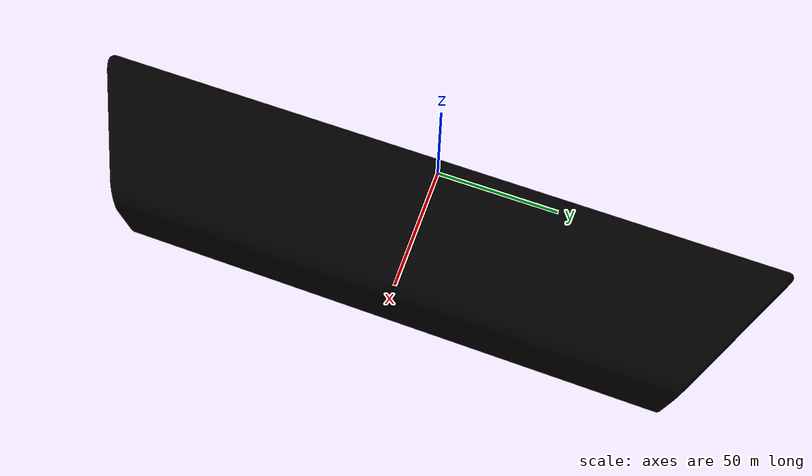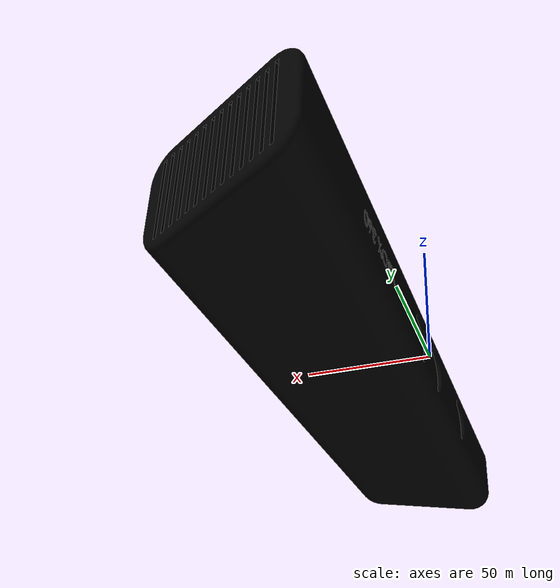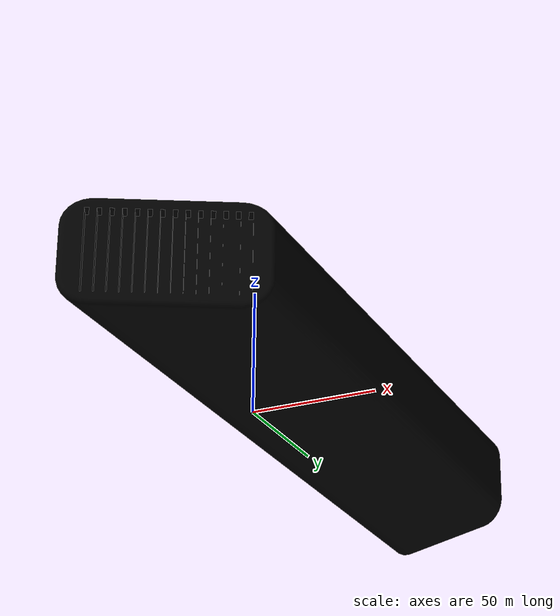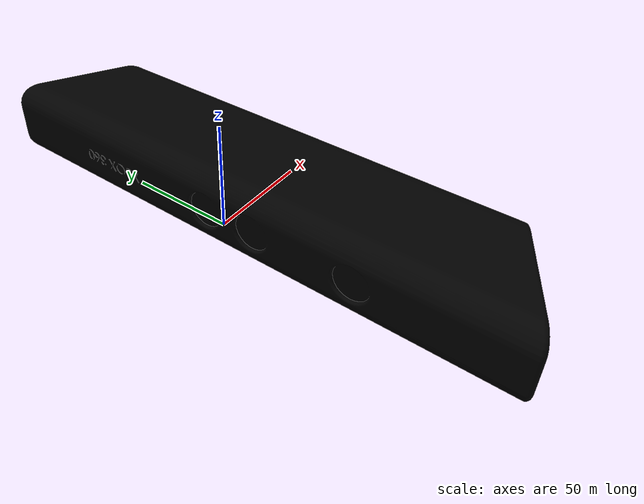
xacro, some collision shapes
<?xml version="1.0"?>
<robot name="justina" xmlns:xacro="http://www.ros.org/wiki/xacro">
	<!-- Import all Gazebo-customization elements, including Gazebo colors -->
	<xacro:include filename="$(find knowledge)/hardware/justina.gazebo" />
	<!-- Import Rviz colors -->
	<xacro:include filename="$(find knowledge)/hardware/materials.xacro" />
	<xacro:include filename="$(find knowledge)/hardware/macros.xacro" />

	<xacro:property name="base_radius" value="0.21"/>
	<xacro:property name="base_height" value="0.2156"/>
	<xacro:property name="base_mass" value="2.0"/>
	<xacro:property name="wheel_radius" value="0.075"/>
	<xacro:property name="wheel_height" value="0.04"/>
	<xacro:property name="wheel_mass" value="0.52098"/>
	<xacro:property name="torso_mass" value="0.6"/>
	<xacro:property name="spine_mass" value="0.1"/>
	<xacro:property name="neck_mass" value="0.001"/>
	<xacro:property name="MX_106_mass" value="0.01"/>
	<xacro:property name="MX_64_mass" value="0.01"/>
	<xacro:property name="kinect_mass" value="0.564"/>
	<xacro:property name="M_PI" value="1.5708"/>
	<xacro:property name="PI" value="3.1416"/>

	<link name="base_link"/>

	<joint name="hex_base_connect" type="fixed">
		<origin xyz="0 0 0" rpy="0 0 0" />
		<parent link="base_link"/>
		<child link="hex_base_link" />
	</joint>

	<link name="hex_base_link">
		<visual>
			<origin xyz="0.0 0.0 0.075" rpy="0.0 0 1.5708"/>
			<!-- origin xyz="0 0 0.1828" rpy="0 0 0"/ -->
			<geometry>
				<mesh filename="package://knowledge/hardware/stl/base/baseHex.dae"/>
				<!-- cylinder length="${base_height}" radius="${base_radius}"/ -->
			</geometry>
			<material name="grey"/>
		</visual>
		<collision>
			<origin xyz="0 0 0.1828" rpy="0 0 0"/>
			<geometry><cylinder length="${base_height}" radius="${base_radius}"/></geometry>
		</collision>
		<inertial>
			<origin xyz="0 0 0.1828" rpy="0 0 0"/>
			<mass value="${base_mass}"/>
			<cylinder_inertia m="${base_mass}" r="${base_radius}" h="${base_height}"/>
		</inertial>
	</link>
	<joint name="wheel_front_left_connect" type="continuous">
		<origin xyz="0.1091 0.189 0.075" rpy="1.57078 0 -3.67"/>
		<parent link="hex_base_link"/>
		<child link="wheel_front_left"/>
		<axis xyz="0 0 1"/>
	</joint>

	<link name="wheel_front_left">
		<visual>
			<origin xyz="0 0 0" rpy="0 3.1416 0"/>
			<geometry>
				<mesh filename="package://knowledge/hardware/stl/base/rueda.dae"/>
				<!-- cylinder length="${wheel_height}" radius="${wheel_radius}"/ -->
			</geometry>
			<material name="grey"/>
		</visual>
		<collision>
			<origin xyz="0 0 0" rpy="0 0 0"/>
			<geometry><cylinder length="${wheel_height}" radius="${wheel_radius}"/></geometry>
		</collision>
		<inertial>
			<origin xyz="0 0 0"/>
			<mass value="${wheel_mass}"/>
			<cylinder_inertia m="${wheel_mass}" r="${wheel_radius}" h="${wheel_height}"/>
		</inertial>
	</link>

	<joint name="wheel_back_connect" type="continuous">
		<origin xyz="-0.2182 0 0.075" rpy="1.57078 0 -1.5708"/>
		<parent link="hex_base_link"/>
		<child link="wheel_back"/>
		<axis xyz="0 0 1"/>
	</joint>

	<link name="wheel_back">
		<visual>
			<origin xyz="0 0 0" rpy="0 3.1416 0"/>
			<geometry>
				<mesh filename="package://knowledge/hardware/stl/base/rueda.dae"/>
				<!-- cylinder length="${wheel_height}" radius="${wheel_radius}"/ -->
			</geometry>
			<material name="grey"/>
		</visual>
		<collision>
			<origin xyz="0 0 0" rpy="0 0 0"/>
			<geometry><cylinder length="${wheel_height}" radius="${wheel_radius}"/></geometry>
		</collision>
		<inertial>
			<origin xyz="0 0 0" rpy="0 0 0"/>
			<mass value="${wheel_mass}"/>
			<cylinder_inertia m="${wheel_mass}" r="${wheel_radius}" h="${wheel_height}"/>
		</inertial>
	</link>

	<joint name="wheel_front_right_connect" type="continuous">
		<origin xyz="0.1091 -0.189 0.075" rpy="1.57078 0 3.67"/>
		<parent link="hex_base_link"/>
		<child link="wheel_front_right"/>
		<axis xyz="0 0 1"/>
	</joint>

	<link name="wheel_front_right">
		<visual>
			<origin xyz="0 0 0" rpy="0 0 0"/>
			<geometry>
				<mesh filename="package://knowledge/hardware/stl/base/rueda.dae"/>
				<!-- cylinder length="${wheel_height}" radius="${wheel_radius}"/ -->
			</geometry>
			<material name="grey"/>
		</visual>
		<collision>
			<origin xyz="0 0 0" rpy="0 0 0"/>
			<geometry><cylinder length="${wheel_height}" radius="${wheel_radius}"/></geometry>
		</collision>
		<inertial>
			<origin xyz="0 0 0" rpy="0 0 0"/>
			<mass value="${wheel_mass}"/>
			<cylinder_inertia m="${wheel_mass}" r="${wheel_radius}" h="${wheel_height}"/>
		</inertial>
	</link>

	<joint name="laser_connect" type="fixed">
		<origin xyz="0.187 0 0.3276" />
		<parent link="hex_base_link"/>
		<child link="laser_link"/>
	</joint>

	<link name="laser_link">
		<collision>
			<origin xyz="0 0 0" rpy="0 0 0"/>
			<geometry>
				<box size="0.08 0.08 0.095"/>
			</geometry>
		</collision>
		<visual>
			<origin xyz="0 0 0" rpy="0 0 0"/>
			<geometry>
				<mesh filename="package://knowledge/hardware/stl/hokuyo.dae"/>
			</geometry>
		</visual>
		<inertial>
			<mass value="0.01"/>
			<origin xyz="0 0 0" rpy="0 0 0"/>
			<box_inertia m="0.01" x="0.08" y="0.08" z="0.095"/>
		</inertial>
	</link>

	<joint name="torso_connect" type="fixed">
		<origin xyz="0 0 0.291"/>
		<parent link="hex_base_link"/>
		<child link="torso_link"/>
	</joint>

	<link name="torso_link">
		<!-- collision  -->
		<visual>
			<origin xyz="0 0 0" rpy="0 0 0"/>
			<geometry>
				<mesh filename="package://knowledge/hardware/stl/baseTorso.dae"/>
			</geometry>
		</visual>
	</link>

	<joint name="spine_connect" type="prismatic">
		<origin xyz="0 0 0.12"/>
		<parent link="torso_link"/>
		<limit effort="1000" lower="0.02" upper="0.3" velocity="0.2"/>
		<child link="spine_link"/>
		<axis xyz="0 0 1" />
	</joint>

	<link name="spine_link">
		<!-- collision  -->
		<visual>
			<origin xyz="0 0 0" rpy="0 0 0"/>
			<geometry>
				<mesh filename="package://knowledge/hardware/stl/spineTorso.dae"/>
			</geometry>
		</visual>
	</link>

	<link name="shoulders_link">
	</link>

	<link name="shoulders_left_link">
		<visual>
			<origin xyz="0.035 0.085 0" rpy = "0 0 0"/>
			<geometry> <box size = "0.08 0.1 0.04"/> </geometry>
			<material name = "la_material"><color rgba="1.0 0.5 0 1"/></material>
		</visual>
	</link>

	<link name="shoulders_right_link">
		<visual>
			<origin xyz="0.035 -0.085 0" rpy = "0 0 0"/>
			<geometry> <box size = "0.08 0.1 0.04"/> </geometry>
			<material name = "la_material"><color rgba="1.0 0.5 0 1"/></material>
		</visual>
	</link>

	<joint name="shoulders_connect" type="fixed">
		<origin xyz="0.0 0.0 0.829" rpy="0 1.5708 0"/>
		<parent link="spine_link"/>
		<child link="shoulders_link"/>
	</joint>

	<joint name="shoulders_left_connect" type="fixed">
		<origin xyz="0 0.145 0" rpy="0 0 0"/>
		<parent link="shoulders_link"/>
		<child link="shoulders_left_link"/>
	</joint>

	<joint name="shoulders_right_connect" type="fixed">
		<origin xyz="0 -0.145 0" rpy="0 0 0"/>
		<parent link="shoulders_link"/>
		<child link="shoulders_right_link"/>
	</joint>

<!--
	Left arm links and joints
    -->
    <link name="left_arm_link0">
	    <visual>
		    <origin xyz="0.0 0.0 0.0" rpy = "0 0 0"/> <!--position of prisma center of link1 wrt frame of link0.-->
		    <geometry>                                     <!--It is not the position of frame1 wrt frame0. It is the center of the prima -->
			    <box size = "0.03 0.03 0.03"/> <!-- Size of prima of link1. Axis are aligned with frame0-->
		    </geometry>
		    <material name = "la_material"><color rgba="1.0 0.0 0.0 1"/></material>
	    </visual>
    </link>

    <link name="left_arm_link1">
	    <visual>
		    <origin xyz="0.0403 0.0 0.015" rpy = "0 0 0"/> <!--position of prisma center of link1 wrt frame of link0.-->
		    <geometry>                                     <!--It is not the position of frame1 wrt frame0. It is the center of the prima -->
			    <box size = "0.08 0.05 0.07"/> <!-- Size of prima of link1. Axis are aligned with frame0-->
		    </geometry>
		    <material name = "la_material"><color rgba="1.0 0.5 0 1"/></material>
	    </visual>
    </link>

    <link name="left_arm_link2">
	    <visual>
		    <origin xyz="0.105 0.0 0.0" rpy = "0 0 0"/> <!--position of prisma center of link2 wrt frame of link1.-->
		    <geometry><box size = "0.21 0.04 0.04"/></geometry>
		    <material name = "la_material"><color rgba="1.0 0.5 0 1"/></material>
	    </visual>
    </link>

    <link name="left_arm_link3">
	    <visual>
		    <origin xyz="0.0 0.0 0.21" rpy = "0 0 0"/>
		    <geometry> <box size = "0.05 0.05 0.075"/> </geometry>
		    <material name = "la_material"><color rgba="1.0 0.5 0 1"/></material>
	    </visual>
    </link>

    <link name="left_arm_link4">
	    <visual>
		    <origin xyz="0.0 -0.09 0.0" rpy = "0 0 0"/>
		    <geometry> <box size = "0.04 0.18 0.04"/> </geometry>
		    <material name = "la_material"><color rgba="1.0 0.5 0 1"/></material>
	    </visual>
    </link>

    <link name="left_arm_link5">
	    <visual>
		    <origin xyz="0.0 0.0 0.18" rpy = "0 0 0"/> <!--position of prisma center of link2 wrt frame of link1.-->
		    <geometry><box size = "0.05 0.05 0.045"/></geometry>
		    <material name = "la_material"><color rgba="1.0 0.5 0 1"/></material>
	    </visual>
    </link>

    <link name="left_arm_link6">
	    <visual>
		    <origin xyz="0.0 -0.05 0.0" rpy = "0 0 0"/>
		    <geometry> <box size = "0.04 0.1 0.04"/> </geometry>
		    <material name = "la_material"><color rgba="1.0 0.5 0 1"/></material>
	    </visual>
    </link>

    <link name="left_arm_link7">
	    <visual>
		    <origin xyz="0.0 0 0.1" rpy = "0 0 0"/>
		    <geometry> <box size = "0.04 0.04 0.06"/> </geometry>
		    <material name = "la_material"><color rgba="1.0 0.5 0 1"/></material>
	    </visual>
    </link>

    <link name="left_arm_grip_center">
	    <visual>
		    <origin xyz="0.0 0 0.0" rpy = "0 0 0"/>
		    <geometry> <box size = "0.04 0.1 0.04"/> </geometry>
		    <material name = "la_material"><color rgba="1.0 0.5 0 1"/></material>
	    </visual>
    </link>

    <link name="left_arm_grip_left">
	    <visual>
		    <origin xyz="-0.065 0 0.0" rpy = "0 0 0"/>
		    <geometry> <box size = "0.13 0.015 0.03"/> </geometry>
		    <material name = "la_material"><color rgba="1.0 0.5 0 1"/></material>
	    </visual>
    </link>

    <link name="left_arm_grip_right">
	    <visual>
		    <origin xyz="0.065 0 0.0" rpy = "0 0 0"/>
		    <geometry> <box size = "0.13 0.015 0.03"/> </geometry>
		    <material name = "la_material"><color rgba="1.0 0.5 0 1"/></material>
	    </visual>
    </link>

    <!--Remeber that origin is the transform from parent frame to child frame and joint is put on child frame -->
    <joint name="la_0_joint" type="fixed">
	    <origin xyz="0.055 0.09 0" rpy="1.5708 0 0"/>
	    <parent link="shoulders_left_link"/>
	    <child link="left_arm_link0"/>
    </joint>
    <joint name="la_1_joint" type="revolute">
	    <origin xyz="0.055 0.09 0" rpy="1.5708 0 0"/>
	    <parent link="shoulders_left_link"/>
	    <child link="left_arm_link1"/>
	    <axis xyz="0 0 1" />
    	<limit effort="1000.0" lower="-1.570795" upper="1.570795" velocity="0.5"/>
    </joint>
    <!--The next six origins are taken from the Denavit-Hartenberg parameters -->
    <joint name="la_2_joint" type="revolute">
	    <origin xyz="0.0603 0 0" rpy="1.5708 0 0"/><!--Transformation from link1 to link2 when theta1 = 0 -->
	    <parent link="left_arm_link1"/>
	    <child link="left_arm_link2"/>
	    <axis xyz="0 0 1" />
    	<limit effort="1000.0" lower="-1.570795" upper="1.570795" velocity="0.5"/>
    </joint>
    <joint name="la_3_joint" type="revolute">
	    <origin xyz="0.0 0 0" rpy="1.5708 0 1.5708"/><!--Transformation from link2 to link3 when theta2 = 0 -->
	    <parent link="left_arm_link2"/>
	    <child link="left_arm_link3"/>
	    <axis xyz="0 0 1" />
    	<limit effort="1000.0" lower="-1.570795" upper="1.570795" velocity="0.5"/>
    </joint>
    <joint name="la_4_joint" type="revolute">
	    <origin xyz="0 0 0.27" rpy="-1.5708 0 -1.5708"/><!--Transformation from link3 to link4 when theta3 = 0 -->
	    <parent link="left_arm_link3"/>
	    <child link="left_arm_link4"/>
	    <axis xyz="0 0 1" />
    	<limit effort="1000.0" lower="-1.570795" upper="1.570795" velocity="0.5"/>
    </joint>
    <joint name="la_5_joint" type="revolute">
	    <origin xyz="0.0 0 0" rpy="1.5708 0 0"/><!--Transformation from link4 to link5 when theta4 = 0 -->
	    <parent link="left_arm_link4"/>
	    <child link="left_arm_link5"/>
	    <axis xyz="0 0 1" />
    	<limit effort="1000.0" lower="-1.570795" upper="1.570795" velocity="0.5"/>
    </joint>
    <joint name="la_6_joint" type="revolute">
	    <origin xyz="0 0 0.2126" rpy="-1.5708 0 0"/><!--Transformation from link5 to link6 when theta5 = 0 -->
	    <parent link="left_arm_link5"/>
	    <child link="left_arm_link6"/>
	    <axis xyz="0 0 1" />
    	<limit effort="1000.0" lower="-1.570795" upper="1.570795" velocity="0.5"/>
    </joint>
    <joint name="la_7_joint" type="revolute">
	    <origin xyz="0.0 0 0" rpy="1.5708 0 0"/><!--Transformation from link6 to link7 when theta6 = 0 -->
	    <parent link="left_arm_link6"/>
	    <child link="left_arm_link7"/>
	    <axis xyz="0 0 1" />
    	<limit effort="1000.0" lower="-1.570795" upper="1.570795" velocity="0.5"/>
    </joint>
    <joint name="la_grip_center_joint" type="fixed">
	    <origin xyz="0 0 0.13" rpy="0 0 0"/><!--Transformation from link7 to the center of the gripper -->
	    <parent link="left_arm_link7"/>
	    <child link="left_arm_grip_center"/>
    </joint>
    <joint name="la_grip_left" type="revolute">
	    <origin xyz="0 -0.04 0" rpy="0 1.5708 0"/><!--Transformation from link7 to the center of the gripper -->
	    <parent link="left_arm_grip_center"/>
	    <child link="left_arm_grip_left"/>
	    <axis xyz="0 0 1" />
    	<limit effort="1000.0" lower="-1.570795" upper="1.570795" velocity="0.5"/>
    </joint>
    <joint name="la_grip_right" type="revolute">
	    <origin xyz="0 0.04 0" rpy="0 -1.5708 0"/><!--Transformation from link7 to the center of the gripper -->
	    <parent link="left_arm_grip_center"/>
	    <child link="left_arm_grip_right"/>
	    <axis xyz="0 0 1" />
    	<limit effort="1000.0" lower="-1.570795" upper="1.570795" velocity="0.5"/>
    </joint>

    <!--
	RIGHT ARM LINKS AND JOINTS
    -->

    <link name="right_arm_link0">
	    <visual>
		    <origin xyz="0.0 0.0 0.0" rpy = "0 0 0"/> <!--position of prisma center of link1 wrt frame of link0.-->
		    <geometry>                                     <!--It is not the position of frame1 wrt frame0. It is the center of the prima -->
			    <box size = "0.03 0.03 0.03"/> <!-- Size of prima of link1. Axis are aligned with frame0-->
		    </geometry>
		    <material name = "la_material"><color rgba="1.0 0.0 0.0 1"/></material>
	    </visual>
    </link>

    <link name="right_arm_link1">
	    <visual>
		    <origin xyz="0.0403 0.0 -0.015" rpy = "0 0 0"/> <!--position of prisma center of link1 wrt frame of link0.-->
		    <geometry>                                     <!--It is not the position of frame1 wrt frame0. It is the center of the prima -->
			    <box size = "0.08 0.05 0.07"/> <!-- Size of prima of link1. Axis are aligned with frame0-->
		    </geometry>
		    <material name = "la_material"><color rgba="1.0 0.5 0 1"/></material>
	    </visual>
    </link>

    <link name="right_arm_link2">
	    <visual>
		    <origin xyz="0.105 0.0 0.0" rpy = "0 0 0"/> <!--position of prisma center of link2 wrt frame of link1.-->
		    <geometry><box size = "0.21 0.04 0.04"/></geometry>
		    <material name = "la_material"><color rgba="1.0 0.5 0 1"/></material>
	    </visual>
    </link>

    <link name="right_arm_link3">
	    <visual>
		    <origin xyz="0.0 0.0 0.21" rpy = "0 0 0"/>
		    <geometry> <box size = "0.05 0.05 0.075"/> </geometry>
		    <material name = "la_material"><color rgba="1.0 0.5 0 1"/></material>
	    </visual>
    </link>

    <link name="right_arm_link4">
	    <visual>
		    <origin xyz="0.0 -0.09 0.0" rpy = "0 0 0"/>
		    <geometry> <box size = "0.04 0.18 0.04"/> </geometry>
		    <material name = "la_material"><color rgba="1.0 0.5 0 1"/></material>
	    </visual>
    </link>

    <link name="right_arm_link5">
	    <visual>
		    <origin xyz="0.0 0.0 0.18" rpy = "0 0 0"/> <!--position of prisma center of link2 wrt frame of link1.-->
		    <geometry><box size = "0.05 0.05 0.045"/></geometry>
		    <material name = "la_material"><color rgba="1.0 0.5 0 1"/></material>
	    </visual>
    </link>

    <link name="right_arm_link6">
	    <visual>
		    <origin xyz="0.0 -0.05 0.0" rpy = "0 0 0"/>
		    <geometry> <box size = "0.04 0.1 0.04"/> </geometry>
		    <material name = "la_material"><color rgba="1.0 0.5 0 1"/></material>
	    </visual>
    </link>

    <link name="right_arm_link7">
	    <visual>
		    <origin xyz="0.0 0 0.1" rpy = "0 0 0"/>
		    <geometry> <box size = "0.04 0.04 0.06"/> </geometry>
		    <material name = "la_material"><color rgba="1.0 0.5 0 1"/></material>
	    </visual>
    </link>

    <link name="right_arm_grip_center">
	    <visual>
		    <origin xyz="0.0 0 0.0" rpy = "0 0 0"/>
		    <geometry> <box size = "0.04 0.1 0.04"/> </geometry>
		    <material name = "la_material"><color rgba="1.0 0.5 0 1"/></material>
	    </visual>
    </link>

    <link name="right_arm_grip_left">
	    <visual>
		    <origin xyz="-0.065 0 0.0" rpy = "0 0 0"/>
		    <geometry> <box size = "0.13 0.015 0.03"/> </geometry>
		    <material name = "la_material"><color rgba="1.0 0.5 0 1"/></material>
	    </visual>
    </link>

    <link name="right_arm_grip_right">
	    <visual>
		    <origin xyz="0.065 0 0.0" rpy = "0 0 0"/>
		    <geometry> <box size = "0.13 0.015 0.03"/> </geometry>
		    <material name = "la_material"><color rgba="1.0 0.5 0 1"/></material>
	    </visual>
    </link>

    <!--Remeber that origin is the transform from parent frame to child frame and joint is put on child frame -->
    <joint name="ra_0_joint" type="fixed">
	    <origin xyz="0.055 -0.09 0" rpy="1.5708 0 0"/>
	    <parent link="shoulders_right_link"/>
	    <child link="right_arm_link0"/>
    </joint>
    <joint name="ra_1_joint" type="revolute">
	    <origin xyz="0.055 -0.09 0" rpy="1.5708 0 0"/>
	    <parent link="shoulders_right_link"/>
	    <child link="right_arm_link1"/>
	    <axis xyz="0 0 1" />
    	<limit effort="1000.0" lower="-1.570795" upper="1.570795" velocity="0.5"/>
    </joint>
    <!--The next six origins are taken from the Denavit-Hartenberg parameters -->
    <joint name="ra_2_joint" type="revolute">
	    <origin xyz="0.0603 0 0" rpy="1.5708 0 0"/><!--Transformation from link1 to link2 when theta1 = 0 -->
	    <parent link="right_arm_link1"/>
	    <child link="right_arm_link2"/>
	    <axis xyz="0 0 1" />
    	<limit effort="1000.0" lower="-1.570795" upper="1.570795" velocity="0.5"/>
    </joint>
    <joint name="ra_3_joint" type="revolute">
	    <origin xyz="0.0 0 0" rpy="1.5708 0 1.5708"/><!--Transformation from link2 to link3 when theta2 = 0 -->
	    <parent link="right_arm_link2"/>
	    <child link="right_arm_link3"/>
	    <axis xyz="0 0 1" />
    	<limit effort="1000.0" lower="-1.570795" upper="1.570795" velocity="0.5"/>
    </joint>
    <joint name="ra_4_joint" type="revolute">
	    <origin xyz="0 0 0.27" rpy="-1.5708 0 -1.5708"/><!--Transformation from link3 to link4 when theta3 = 0 -->
	    <parent link="right_arm_link3"/>
	    <child link="right_arm_link4"/>
	    <axis xyz="0 0 1" />
    	<limit effort="1000.0" lower="-1.570795" upper="1.570795" velocity="0.5"/>
    </joint>
    <joint name="ra_5_joint" type="revolute">
	    <origin xyz="0.0 0 0" rpy="1.5708 0 0"/><!--Transformation from link4 to link5 when theta4 = 0 -->
	    <parent link="right_arm_link4"/>
	    <child link="right_arm_link5"/>
	    <axis xyz="0 0 1" />
    	<limit effort="1000.0" lower="-1.570795" upper="1.570795" velocity="0.5"/>
    </joint>
    <joint name="ra_6_joint" type="revolute">
	    <origin xyz="0 0 0.2126" rpy="-1.5708 0 0"/><!--Transformation from link5 to link6 when theta5 = 0 -->
	    <parent link="right_arm_link5"/>
	    <child link="right_arm_link6"/>
	    <axis xyz="0 0 1" />
    	<limit effort="1000.0" lower="-1.570795" upper="1.570795" velocity="0.5"/>
    </joint>
    <joint name="ra_7_joint" type="revolute">
	    <origin xyz="0.0 0 0" rpy="1.5708 0 0"/><!--Transformation from link6 to link7 when theta6 = 0 -->
	    <parent link="right_arm_link6"/>
	    <child link="right_arm_link7"/>
	    <axis xyz="0 0 1" />
    	<limit effort="1000.0" lower="-1.570795" upper="1.570795" velocity="0.5"/>
    </joint>
    <joint name="ra_grip_center_joint" type="fixed">
	    <origin xyz="0 0 0.13" rpy="0 0 0"/><!--Transformation from link7 to the center of the gripper -->
	    <parent link="right_arm_link7"/>
	    <child link="right_arm_grip_center"/>
    </joint>
    <joint name="ra_grip_left" type="revolute">
	    <origin xyz="0 -0.04 0" rpy="0 1.5708 0"/><!--Transformation from link7 to the center of the gripper -->
	    <parent link="right_arm_grip_center"/>
	    <child link="right_arm_grip_left"/>
	    <axis xyz="0 0 1" />
    	<limit effort="1000.0" lower="-1.570795" upper="1.570795" velocity="0.5"/>
    </joint>
    <joint name="ra_grip_right" type="revolute">
	    <origin xyz="0 0.04 0" rpy="0 -1.5708 0"/><!--Transformation from link7 to the center of the gripper -->
	    <parent link="right_arm_grip_center"/>
	    <child link="right_arm_grip_right"/>
	    <axis xyz="0 0 1" />
    	<limit effort="1000.0" lower="-1.570795" upper="1.570795" velocity="0.5"/>
    </joint>

<!--
 #################################
	Head links and Joint
  ################################
    -->
	<joint name="neck_connect" type="fixed">
		<origin xyz="0 0 1.009" rpy="0 0 0"/>
		<parent link="spine_link"/>
		<child link="neck_link"/>
	</joint>

	<link name="neck_link">
		<collision>
			<origin xyz= "0 0 -0.06" rpy="0 0 0"/>
			<geometry><cylinder length="0.14" radius="0.016"/></geometry>
		</collision>
		<visual>
			<origin xyz= "0 0 -0.06" rpy="0 0 0"/>
			<geometry><cylinder length="0.12" radius="0.016"/></geometry>
			<material name="white"><color rgba="1.0 1.0 1.0 1"/></material>
		</visual>
		<inertial>
			<mass value="${neck_mass}"/>
			<origin xyz= "0 0 -0.06" rpy="0 0 0"/>
			<cylinder_inertia m="${neck_mass}" r="0.016" h="0.12"/>
		</inertial>
	</link>

	<joint name="pan_dyn_connect" type="fixed">
		<origin xyz="0.0 0.0 0.045" rpy="0 0 0"/>
		<parent link="neck_link"/>
		<child link="pan_dyn_link"/>
	</joint>

	<link name="pan_dyn_link">
		<collision>
			<origin xyz= "0 0 -0.02" rpy="0 0 -1.5708"/>
			<geometry><box size="0.06 0.04 0.06"/></geometry>
		</collision>
		<visual>
			<origin xyz= "0 0 -0.02" rpy="0 0 -1.5708"/>
			<geometry>
				<mesh filename="package://knowledge/hardware/stl/motores/mx64.stl"/>
			</geometry>
			<material name="grey"/>
		</visual>
		<inertial>
			<mass value="${MX_64_mass}"/>
			<origin xyz= "0 0 -0.02" rpy="0 0 0"/>
			<box_inertia m="${MX_64_mass}" x="0.06" y="0.04" z="0.06"/>
		</inertial>
	</link>

	<joint name="pan_connect" type="revolute">
		<origin xyz="0.0 0.0 0.0" rpy="0 0 0"/>
		<parent link="pan_dyn_link"/>
		<child link="head_link1"/>
		<axis xyz="0 0 1" />
		<limit upper="1.5708" lower="-1.5708" effort="100" velocity="1.2" />
	</joint>

	<link name="head_link1"/>

	<joint name="tilt_dyn_connect" type="fixed">
		<origin xyz="0.01 0.0 0.03" rpy="-1.5708 0 0"/>
		<parent link="head_link1"/>
		<child link="tilt_dyn_link"/>
	</joint>

	<link name="tilt_dyn_link">
		<collision>
			<origin xyz= "0 0 0" rpy="0 0 -1.5708"/>
			<geometry><box size="0.06 0.04 0.06"/></geometry>
		</collision>
		<visual>
			<origin xyz= "0 0 0" rpy="0 0 -1.5708"/>
			<geometry>
				<mesh filename="package://knowledge/hardware/stl/motores/mx106.stl"/>
			</geometry>
			<material name="grey"/>
		</visual>
		<inertial>
			<mass value="${MX_106_mass}"/>
			<origin xyz= "0 0 0" rpy="0 0 -1.5708"/>
			<box_inertia m="${MX_106_mass}" x="0.06" y="0.04" z="0.06"/>
		</inertial>
	</link>

	<joint name="tilt_connect" type="revolute">
		<origin xyz="0 0 0" rpy="0 0 0" />
		<parent link="tilt_dyn_link"/>
		<child link="head_link2"/>
		<axis xyz="0 0 1" />
		<limit upper="1.0" lower="0.0" effort="1000" velocity="1.2" />
	</joint>

	<link name="head_link2"/>

	<joint name="kinect_connect" type="fixed">
		<origin xyz="0.02 -0.08 0" rpy="0 1.5707 0"/>
		<parent link="head_link2"/>
		<child link="kinect_link"/>
	</joint>

	<link name="kinect_link">
		<visual>
			<origin xyz="0 0.04 -0.03" rpy="0 ${PI} 0"/>
			<geometry>
				<mesh filename="package://knowledge/hardware/stl/kinect.stl"/>
			</geometry>
			<material name="black"/>
		</visual>
	</link>

	<transmission name="tran1">
		<type>transmission_interface/SimpleTransmission</type>
		<joint name="wheel_front_left_connect">
			<hardwareInterface>hardware_interface/EffortJointInterface</hardwareInterface>
		</joint>
		<actuator name="motor1">
			<hardwareInterface>hardware_interface/EffortJointInterface</hardwareInterface>
			<mechanicalReduction>16</mechanicalReduction>
		</actuator>
	</transmission>

	<transmission name="tran2">
		<type>transmission_interface/SimpleTransmission</type>
		<joint name="wheel_back_left_connect">
			<hardwareInterface>hardware_interface/EffortJointInterface</hardwareInterface>
		</joint>
		<actuator name="motor2">
			<hardwareInterface>hardware_interface/EffortJointInterface</hardwareInterface>
			<mechanicalReduction>16</mechanicalReduction>
		</actuator>
	</transmission>

	<transmission name="tran3">
		<type>transmission_interface/SimpleTransmission</type>
		<joint name="wheel_back_right_connect">
			<hardwareInterface>hardware_interface/EffortJointInterface</hardwareInterface>
		</joint>
		<actuator name="motor3">
			<hardwareInterface>hardware_interface/EffortJointInterface</hardwareInterface>
			<mechanicalReduction>16</mechanicalReduction>
		</actuator>
	</transmission>

	<transmission name="tran4">
		<type>transmission_interface/SimpleTransmission</type>
		<joint name="wheel_front_right_connect">
			<hardwareInterface>hardware_interface/EffortJointInterface</hardwareInterface>
		</joint>
		<actuator name="motor4">
			<hardwareInterface>hardware_interface/EffortJointInterface</hardwareInterface>
			<mechanicalReduction>16</mechanicalReduction>
		</actuator>
	</transmission>

</robot>

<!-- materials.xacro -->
<robot>

	<material name="black">
		<color rgba="0.0 0.0 0.0 1.0"/>
	</material>

	<material name="blue">
		<color rgba="0.0 0.0 0.8 1.0"/>
	</material>

	<material name="green">
		<color rgba="0.0 0.8 0.0 1.0"/>
	</material>

	<material name="grey">
		<color rgba="0.2 0.2 0.2 1.0"/>
	</material>

	<material name="orange">
		<color rgba="${255/255} ${108/255} ${10/255} 1.0"/>
	</material>

	<material name="brown">
		<color rgba="${222/255} ${207/255} ${195/255} 1.0"/>
	</material>

	<material name="red">
		<color rgba="0.8 0.0 0.0 1.0"/>
	</material>

	<material name="white">
		<color rgba="1.0 1.0 1.0 1.0"/>
	</material>

</robot>

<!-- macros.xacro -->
<robot>
	<macro name="cylinder_inertia" params="m r h">
		<inertia  ixx="${m*(3*r*r+h*h)/12}" ixy = "0" ixz = "0"
			iyy="${m*(3*r*r+h*h)/12}" iyz = "0"
			izz="${m*r*r/2}"
			/>
	</macro>

	<macro name="box_inertia" params="m x y z">
		<inertia  ixx="${m*(y*y+z*z)/12}" ixy = "0" ixz = "0"
			iyy="${m*(x*x+z*z)/12}" iyz = "0"
			izz="${m*(x*x+z*z)/12}"
			/>
	</macro>

	<macro name="sphere_inertia" params="m r">
		<inertia  ixx="${2*m*r*r/5}" ixy = "0" ixz = "0"
			iyy="${2*m*r*r/5}" iyz = "0"
			izz="${2*m*r*r/5}"
			/>
	</macro>
</robot>
